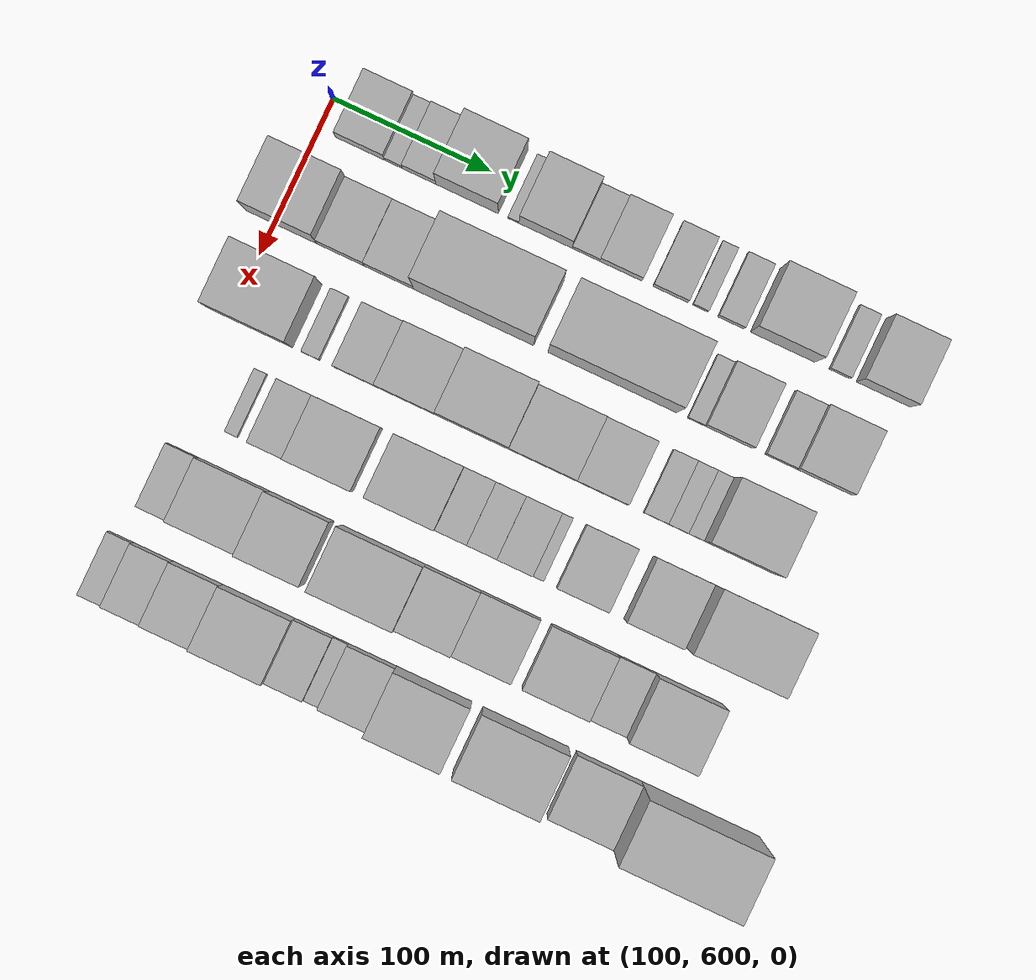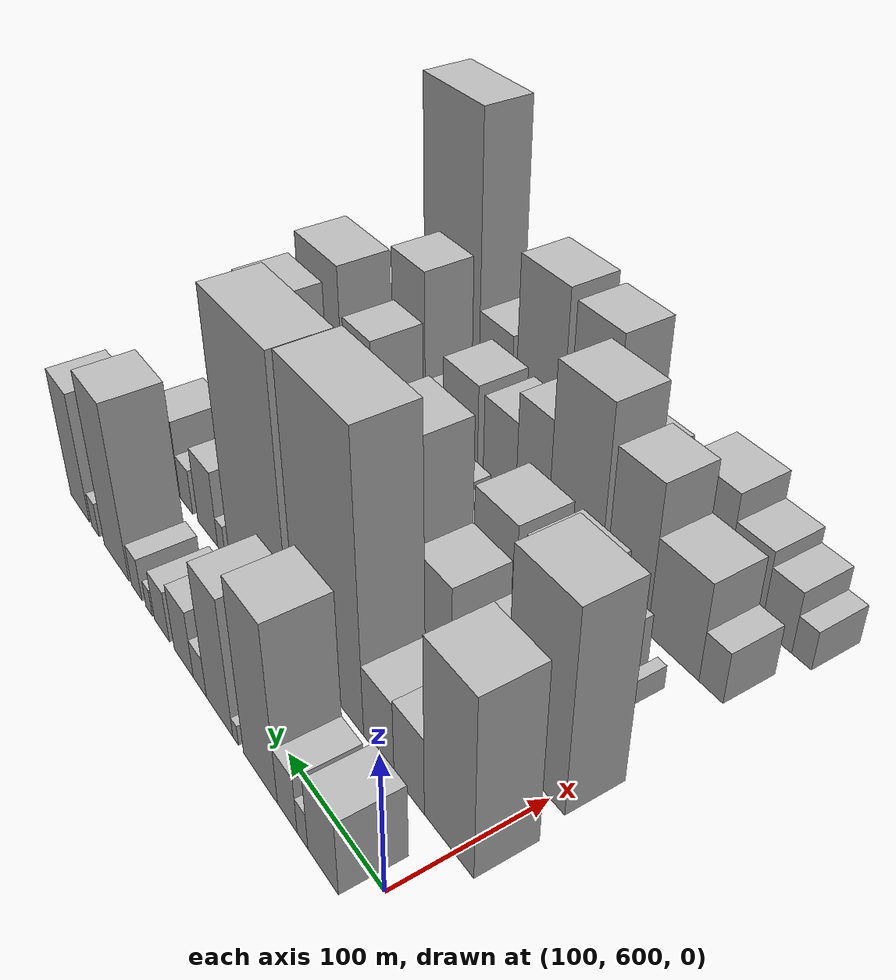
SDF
<sdf version="1.6">
 <world name="default">
  <model name="building_44">
   <static>1</static>
   <pose>100.0000 626.1144 0 0.000000 0.000000 0.000000</pose>
   <link name="link">
    <pose>0 0 27.00 0 0 0</pose>
    <collision name="collision"><geometry><box><size>40.0000 30.8526 54.0000</size></box></geometry></collision>
    <visual name="visual">
     <cast_shadows>0</cast_shadows>
     <geometry><box><size>40.0000 30.8526 54.0000</size></box></geometry>
     <material>
      <script>
       <uri>model://HANNAS_wall/materials/scripts</uri>
       <uri>model://HANNAS_wall/materials/textures</uri>
       <name>vrc/HANNAS_wall</name>
      </script>
     </material>
    </visual>
   </link>
  </model>
  <model name="building_45">
   <static>1</static>
   <pose>100.0000 647.2259 0 0.000000 0.000000 0.000000</pose>
   <link name="link">
    <pose>0 0 13.50 0 0 0</pose>
    <collision name="collision"><geometry><box><size>40.0000 11.3703 27.0000</size></box></geometry></collision>
    <visual name="visual">
     <cast_shadows>0</cast_shadows>
     <geometry><box><size>40.0000 11.3703 27.0000</size></box></geometry>
     <material>
      <script>
       <uri>model://HANNAS_wall/materials/scripts</uri>
       <uri>model://HANNAS_wall/materials/textures</uri>
       <name>vrc/HANNAS_wall</name>
      </script>
     </material>
    </visual>
   </link>
  </model>
  <model name="building_46">
   <static>1</static>
   <pose>100.0000 663.6406 0 0.000000 0.000000 0.000000</pose>
   <link name="link">
    <pose>0 0 21.00 0 0 0</pose>
    <collision name="collision"><geometry><box><size>40.0000 21.4592 42.0000</size></box></geometry></collision>
    <visual name="visual">
     <cast_shadows>0</cast_shadows>
     <geometry><box><size>40.0000 21.4592 42.0000</size></box></geometry>
     <material>
      <script>
       <uri>model://HANNAS_wall/materials/scripts</uri>
       <uri>model://HANNAS_wall/materials/textures</uri>
       <name>vrc/HANNAS_wall</name>
      </script>
     </material>
    </visual>
   </link>
  </model>
  <model name="building_47">
   <static>1</static>
   <pose>100.0000 694.1442 0 0.000000 0.000000 0.000000</pose>
   <link name="link">
    <pose>0 0 64.50 0 0 0</pose>
    <collision name="collision"><geometry><box><size>40.0000 39.5479 129.0000</size></box></geometry></collision>
    <visual name="visual">
     <cast_shadows>0</cast_shadows>
     <geometry><box><size>40.0000 39.5479 129.0000</size></box></geometry>
     <material>
      <script>
       <uri>model://HANNAS_wall/materials/scripts</uri>
       <uri>model://HANNAS_wall/materials/textures</uri>
       <name>vrc/HANNAS_wall</name>
      </script>
     </material>
    </visual>
   </link>
  </model>
  <model name="building_48">
   <static>1</static>
   <pose>100.0000 723.4973 0 0.000000 0.000000 0.000000</pose>
   <link name="link">
    <pose>0 0 7.50 0 0 0</pose>
    <collision name="collision"><geometry><box><size>40.0000 7.1582 15.0000</size></box></geometry></collision>
    <visual name="visual">
     <cast_shadows>0</cast_shadows>
     <geometry><box><size>40.0000 7.1582 15.0000</size></box></geometry>
     <material>
      <script>
       <uri>model://HANNAS_wall/materials/scripts</uri>
       <uri>model://HANNAS_wall/materials/textures</uri>
       <name>vrc/HANNAS_wall</name>
      </script>
     </material>
    </visual>
   </link>
  </model>
  <model name="building_49">
   <static>1</static>
   <pose>100.0000 743.8904 0 0.000000 0.000000 0.000000</pose>
   <link name="link">
    <pose>0 0 51.00 0 0 0</pose>
    <collision name="collision"><geometry><box><size>40.0000 33.6281 102.0000</size></box></geometry></collision>
    <visual name="visual">
     <cast_shadows>0</cast_shadows>
     <geometry><box><size>40.0000 33.6281 102.0000</size></box></geometry>
     <material>
      <script>
       <uri>model://HANNAS_wall/materials/scripts</uri>
       <uri>model://HANNAS_wall/materials/textures</uri>
       <name>vrc/HANNAS_wall</name>
      </script>
     </material>
    </visual>
   </link>
  </model>
  <model name="building_50">
   <static>1</static>
   <pose>100.0000 769.4575 0 0.000000 0.000000 0.000000</pose>
   <link name="link">
    <pose>0 0 15.00 0 0 0</pose>
    <collision name="collision"><geometry><box><size>40.0000 17.5061 30.0000</size></box></geometry></collision>
    <visual name="visual">
     <cast_shadows>0</cast_shadows>
     <geometry><box><size>40.0000 17.5061 30.0000</size></box></geometry>
     <material>
      <script>
       <uri>model://HANNAS_wall/materials/scripts</uri>
       <uri>model://HANNAS_wall/materials/textures</uri>
       <name>vrc/HANNAS_wall</name>
      </script>
     </material>
    </visual>
   </link>
  </model>
  <model name="building_51">
   <static>1</static>
   <pose>100.0000 791.5720 0 0.000000 0.000000 0.000000</pose>
   <link name="link">
    <pose>0 0 25.50 0 0 0</pose>
    <collision name="collision"><geometry><box><size>40.0000 26.7227 51.0000</size></box></geometry></collision>
    <visual name="visual">
     <cast_shadows>0</cast_shadows>
     <geometry><box><size>40.0000 26.7227 51.0000</size></box></geometry>
     <material>
      <script>
       <uri>model://HANNAS_wall/materials/scripts</uri>
       <uri>model://HANNAS_wall/materials/textures</uri>
       <name>vrc/HANNAS_wall</name>
      </script>
     </material>
    </visual>
   </link>
  </model>
  <model name="building_52">
   <static>1</static>
   <pose>100.0000 823.0485 0 0.000000 0.000000 0.000000</pose>
   <link name="link">
    <pose>0 0 19.50 0 0 0</pose>
    <collision name="collision"><geometry><box><size>40.0000 22.2304 39.0000</size></box></geometry></collision>
    <visual name="visual">
     <cast_shadows>0</cast_shadows>
     <geometry><box><size>40.0000 22.2304 39.0000</size></box></geometry>
     <material>
      <script>
       <uri>model://HANNAS_wall/materials/scripts</uri>
       <uri>model://HANNAS_wall/materials/textures</uri>
       <name>vrc/HANNAS_wall</name>
      </script>
     </material>
    </visual>
   </link>
  </model>
  <model name="building_53">
   <static>1</static>
   <pose>100.0000 842.0927 0 0.000000 0.000000 0.000000</pose>
   <link name="link">
    <pose>0 0 10.50 0 0 0</pose>
    <collision name="collision"><geometry><box><size>40.0000 9.8579 21.0000</size></box></geometry></collision>
    <visual name="visual">
     <cast_shadows>0</cast_shadows>
     <geometry><box><size>40.0000 9.8579 21.0000</size></box></geometry>
     <material>
      <script>
       <uri>model://HANNAS_wall/materials/scripts</uri>
       <uri>model://HANNAS_wall/materials/textures</uri>
       <name>vrc/HANNAS_wall</name>
      </script>
     </material>
    </visual>
   </link>
  </model>
  <model name="building_54">
   <static>1</static>
   <pose>100.0000 861.3727 0 0.000000 0.000000 0.000000</pose>
   <link name="link">
    <pose>0 0 16.50 0 0 0</pose>
    <collision name="collision"><geometry><box><size>40.0000 16.7021 33.0000</size></box></geometry></collision>
    <visual name="visual">
     <cast_shadows>0</cast_shadows>
     <geometry><box><size>40.0000 16.7021 33.0000</size></box></geometry>
     <material>
      <script>
       <uri>model://HANNAS_wall/materials/scripts</uri>
       <uri>model://HANNAS_wall/materials/textures</uri>
       <name>vrc/HANNAS_wall</name>
      </script>
     </material>
    </visual>
   </link>
  </model>
  <model name="building_55">
   <static>1</static>
   <pose>100.0000 894.1860 0 0.000000 0.000000 0.000000</pose>
   <link name="link">
    <pose>0 0 67.50 0 0 0</pose>
    <collision name="collision"><geometry><box><size>40.0000 40.9244 135.0000</size></box></geometry></collision>
    <visual name="visual">
     <cast_shadows>0</cast_shadows>
     <geometry><box><size>40.0000 40.9244 135.0000</size></box></geometry>
     <material>
      <script>
       <uri>model://HANNAS_wall/materials/scripts</uri>
       <uri>model://HANNAS_wall/materials/textures</uri>
       <name>vrc/HANNAS_wall</name>
      </script>
     </material>
    </visual>
   </link>
  </model>
  <model name="building_56">
   <static>1</static>
   <pose>100.0000 930.2796 0 0.000000 0.000000 0.000000</pose>
   <link name="link">
    <pose>0 0 13.50 0 0 0</pose>
    <collision name="collision"><geometry><box><size>40.0000 13.2628 27.0000</size></box></geometry></collision>
    <visual name="visual">
     <cast_shadows>0</cast_shadows>
     <geometry><box><size>40.0000 13.2628 27.0000</size></box></geometry>
     <material>
      <script>
       <uri>model://HANNAS_wall/materials/scripts</uri>
       <uri>model://HANNAS_wall/materials/textures</uri>
       <name>vrc/HANNAS_wall</name>
      </script>
     </material>
    </visual>
   </link>
  </model>
  <model name="building_57">
   <static>1</static>
   <pose>100.0000 957.9447 0 0.000000 0.000000 0.000000</pose>
   <link name="link">
    <pose>0 0 51.00 0 0 0</pose>
    <collision name="collision"><geometry><box><size>40.0000 34.0675 102.0000</size></box></geometry></collision>
    <visual name="visual">
     <cast_shadows>0</cast_shadows>
     <geometry><box><size>40.0000 34.0675 102.0000</size></box></geometry>
     <material>
      <script>
       <uri>model://HANNAS_wall/materials/scripts</uri>
       <uri>model://HANNAS_wall/materials/textures</uri>
       <name>vrc/HANNAS_wall</name>
      </script>
     </material>
    </visual>
   </link>
  </model>
  <model name="building_99">
   <static>1</static>
   <pose>160.0000 604.8363 0 0.000000 0.000000 0.000000</pose>
   <link name="link">
    <pose>0 0 64.50 0 0 0</pose>
    <collision name="collision"><geometry><box><size>40.0000 44.9960 129.0000</size></box></geometry></collision>
    <visual name="visual">
     <cast_shadows>0</cast_shadows>
     <geometry><box><size>40.0000 44.9960 129.0000</size></box></geometry>
     <material>
      <script>
       <uri>model://HANNAS_wall/materials/scripts</uri>
       <uri>model://HANNAS_wall/materials/textures</uri>
       <name>vrc/HANNAS_wall</name>
      </script>
     </material>
    </visual>
   </link>
  </model>
  <model name="building_100">
   <static>1</static>
   <pose>160.0000 642.2021 0 0.000000 0.000000 0.000000</pose>
   <link name="link">
    <pose>0 0 28.50 0 0 0</pose>
    <collision name="collision"><geometry><box><size>40.0000 29.7357 57.0000</size></box></geometry></collision>
    <visual name="visual">
     <cast_shadows>0</cast_shadows>
     <geometry><box><size>40.0000 29.7357 57.0000</size></box></geometry>
     <material>
      <script>
       <uri>model://HANNAS_wall/materials/scripts</uri>
       <uri>model://HANNAS_wall/materials/textures</uri>
       <name>vrc/HANNAS_wall</name>
      </script>
     </material>
    </visual>
   </link>
  </model>
  <model name="building_101">
   <static>1</static>
   <pose>160.0000 672.8429 0 0.000000 0.000000 0.000000</pose>
   <link name="link">
    <pose>0 0 27.00 0 0 0</pose>
    <collision name="collision"><geometry><box><size>40.0000 31.5459 54.0000</size></box></geometry></collision>
    <visual name="visual">
     <cast_shadows>0</cast_shadows>
     <geometry><box><size>40.0000 31.5459 54.0000</size></box></geometry>
     <material>
      <script>
       <uri>model://HANNAS_wall/materials/scripts</uri>
       <uri>model://HANNAS_wall/materials/textures</uri>
       <name>vrc/HANNAS_wall</name>
      </script>
     </material>
    </visual>
   </link>
  </model>
  <model name="building_102">
   <static>1</static>
   <pose>160.0000 726.5865 0 0.000000 0.000000 0.000000</pose>
   <link name="link">
    <pose>0 0 105.00 0 0 0</pose>
    <collision name="collision"><geometry><box><size>40.0000 75.9412 210.0000</size></box></geometry></collision>
    <visual name="visual">
     <cast_shadows>0</cast_shadows>
     <geometry><box><size>40.0000 75.9412 210.0000</size></box></geometry>
     <material>
      <script>
       <uri>model://HANNAS_wall/materials/scripts</uri>
       <uri>model://HANNAS_wall/materials/textures</uri>
       <name>vrc/HANNAS_wall</name>
      </script>
     </material>
    </visual>
   </link>
  </model>
  <model name="building_103">
   <static>1</static>
   <pose>160.0000 814.2905 0 0.000000 0.000000 0.000000</pose>
   <link name="link">
    <pose>0 0 102.00 0 0 0</pose>
    <collision name="collision"><geometry><box><size>40.0000 81.4667 204.0000</size></box></geometry></collision>
    <visual name="visual">
     <cast_shadows>0</cast_shadows>
     <geometry><box><size>40.0000 81.4667 204.0000</size></box></geometry>
     <material>
      <script>
       <uri>model://HANNAS_wall/materials/scripts</uri>
       <uri>model://HANNAS_wall/materials/textures</uri>
       <name>vrc/HANNAS_wall</name>
      </script>
     </material>
    </visual>
   </link>
  </model>
  <model name="building_104">
   <static>1</static>
   <pose>160.0000 867.4569 0 0.000000 0.000000 0.000000</pose>
   <link name="link">
    <pose>0 0 12.00 0 0 0</pose>
    <collision name="collision"><geometry><box><size>40.0000 10.8660 24.0000</size></box></geometry></collision>
    <visual name="visual">
     <cast_shadows>0</cast_shadows>
     <geometry><box><size>40.0000 10.8660 24.0000</size></box></geometry>
     <material>
      <script>
       <uri>model://HANNAS_wall/materials/scripts</uri>
       <uri>model://HANNAS_wall/materials/textures</uri>
       <name>vrc/HANNAS_wall</name>
      </script>
     </material>
    </visual>
   </link>
  </model>
  <model name="building_105">
   <static>1</static>
   <pose>160.0000 888.0354 0 0.000000 0.000000 0.000000</pose>
   <link name="link">
    <pose>0 0 30.00 0 0 0</pose>
    <collision name="collision"><geometry><box><size>40.0000 30.2911 60.0000</size></box></geometry></collision>
    <visual name="visual">
     <cast_shadows>0</cast_shadows>
     <geometry><box><size>40.0000 30.2911 60.0000</size></box></geometry>
     <material>
      <script>
       <uri>model://HANNAS_wall/materials/scripts</uri>
       <uri>model://HANNAS_wall/materials/textures</uri>
       <name>vrc/HANNAS_wall</name>
      </script>
     </material>
    </visual>
   </link>
  </model>
  <model name="building_106">
   <static>1</static>
   <pose>160.0000 921.0715 0 0.000000 0.000000 0.000000</pose>
   <link name="link">
    <pose>0 0 18.00 0 0 0</pose>
    <collision name="collision"><geometry><box><size>40.0000 19.7810 36.0000</size></box></geometry></collision>
    <visual name="visual">
     <cast_shadows>0</cast_shadows>
     <geometry><box><size>40.0000 19.7810 36.0000</size></box></geometry>
     <material>
      <script>
       <uri>model://HANNAS_wall/materials/scripts</uri>
       <uri>model://HANNAS_wall/materials/textures</uri>
       <name>vrc/HANNAS_wall</name>
      </script>
     </material>
    </visual>
   </link>
  </model>
  <model name="building_107">
   <static>1</static>
   <pose>160.0000 948.5288 0 0.000000 0.000000 0.000000</pose>
   <link name="link">
    <pose>0 0 31.50 0 0 0</pose>
    <collision name="collision"><geometry><box><size>40.0000 35.1337 63.0000</size></box></geometry></collision>
    <visual name="visual">
     <cast_shadows>0</cast_shadows>
     <geometry><box><size>40.0000 35.1337 63.0000</size></box></geometry>
     <material>
      <script>
       <uri>model://HANNAS_wall/materials/scripts</uri>
       <uri>model://HANNAS_wall/materials/textures</uri>
       <name>vrc/HANNAS_wall</name>
      </script>
     </material>
    </visual>
   </link>
  </model>
  <model name="building_149">
   <static>1</static>
   <pose>220.0000 613.6707 0 0.000000 0.000000 0.000000</pose>
   <link name="link">
    <pose>0 0 73.50 0 0 0</pose>
    <collision name="collision"><geometry><box><size>40.0000 52.3293 147.0000</size></box></geometry></collision>
    <visual name="visual">
     <cast_shadows>0</cast_shadows>
     <geometry><box><size>40.0000 52.3293 147.0000</size></box></geometry>
     <material>
      <script>
       <uri>model://HANNAS_wall/materials/scripts</uri>
       <uri>model://HANNAS_wall/materials/textures</uri>
       <name>vrc/HANNAS_wall</name>
      </script>
     </material>
    </visual>
   </link>
  </model>
  <model name="building_150">
   <static>1</static>
   <pose>220.0000 651.4731 0 0.000000 0.000000 0.000000</pose>
   <link name="link">
    <pose>0 0 13.50 0 0 0</pose>
    <collision name="collision"><geometry><box><size>40.0000 11.2756 27.0000</size></box></geometry></collision>
    <visual name="visual">
     <cast_shadows>0</cast_shadows>
     <geometry><box><size>40.0000 11.2756 27.0000</size></box></geometry>
     <material>
      <script>
       <uri>model://HANNAS_wall/materials/scripts</uri>
       <uri>model://HANNAS_wall/materials/textures</uri>
       <name>vrc/HANNAS_wall</name>
      </script>
     </material>
    </visual>
   </link>
  </model>
  <model name="building_151">
   <static>1</static>
   <pose>220.0000 679.3214 0 0.000000 0.000000 0.000000</pose>
   <link name="link">
    <pose>0 0 25.50 0 0 0</pose>
    <collision name="collision"><geometry><box><size>40.0000 26.4209 51.0000</size></box></geometry></collision>
    <visual name="visual">
     <cast_shadows>0</cast_shadows>
     <geometry><box><size>40.0000 26.4209 51.0000</size></box></geometry>
     <material>
      <script>
       <uri>model://HANNAS_wall/materials/scripts</uri>
       <uri>model://HANNAS_wall/materials/textures</uri>
       <name>vrc/HANNAS_wall</name>
      </script>
     </material>
    </visual>
   </link>
  </model>
  <model name="building_152">
   <static>1</static>
   <pose>220.0000 711.9512 0 0.000000 0.000000 0.000000</pose>
   <link name="link">
    <pose>0 0 37.50 0 0 0</pose>
    <collision name="collision"><geometry><box><size>40.0000 38.8388 75.0000</size></box></geometry></collision>
    <visual name="visual">
     <cast_shadows>0</cast_shadows>
     <geometry><box><size>40.0000 38.8388 75.0000</size></box></geometry>
     <material>
      <script>
       <uri>model://HANNAS_wall/materials/scripts</uri>
       <uri>model://HANNAS_wall/materials/textures</uri>
       <name>vrc/HANNAS_wall</name>
      </script>
     </material>
    </visual>
   </link>
  </model>
  <model name="building_153">
   <static>1</static>
   <pose>220.0000 754.1376 0 0.000000 0.000000 0.000000</pose>
   <link name="link">
    <pose>0 0 75.00 0 0 0</pose>
    <collision name="collision"><geometry><box><size>40.0000 45.5340 150.0000</size></box></geometry></collision>
    <visual name="visual">
     <cast_shadows>0</cast_shadows>
     <geometry><box><size>40.0000 45.5340 150.0000</size></box></geometry>
     <material>
      <script>
       <uri>model://HANNAS_wall/materials/scripts</uri>
       <uri>model://HANNAS_wall/materials/textures</uri>
       <name>vrc/HANNAS_wall</name>
      </script>
     </material>
    </visual>
   </link>
  </model>
  <model name="building_154">
   <static>1</static>
   <pose>220.0000 798.2572 0 0.000000 0.000000 0.000000</pose>
   <link name="link">
    <pose>0 0 37.50 0 0 0</pose>
    <collision name="collision"><geometry><box><size>40.0000 42.7051 75.0000</size></box></geometry></collision>
    <visual name="visual">
     <cast_shadows>0</cast_shadows>
     <geometry><box><size>40.0000 42.7051 75.0000</size></box></geometry>
     <material>
      <script>
       <uri>model://HANNAS_wall/materials/scripts</uri>
       <uri>model://HANNAS_wall/materials/textures</uri>
       <name>vrc/HANNAS_wall</name>
      </script>
     </material>
    </visual>
   </link>
  </model>
  <model name="building_155">
   <static>1</static>
   <pose>220.0000 835.9310 0 0.000000 0.000000 0.000000</pose>
   <link name="link">
    <pose>0 0 30.00 0 0 0</pose>
    <collision name="collision"><geometry><box><size>40.0000 32.6424 60.0000</size></box></geometry></collision>
    <visual name="visual">
     <cast_shadows>0</cast_shadows>
     <geometry><box><size>40.0000 32.6424 60.0000</size></box></geometry>
     <material>
      <script>
       <uri>model://HANNAS_wall/materials/scripts</uri>
       <uri>model://HANNAS_wall/materials/textures</uri>
       <name>vrc/HANNAS_wall</name>
      </script>
     </material>
    </visual>
   </link>
  </model>
  <model name="building_156">
   <static>1</static>
   <pose>220.0000 869.9926 0 0.000000 0.000000 0.000000</pose>
   <link name="link">
    <pose>0 0 15.00 0 0 0</pose>
    <collision name="collision"><geometry><box><size>40.0000 15.4809 30.0000</size></box></geometry></collision>
    <visual name="visual">
     <cast_shadows>0</cast_shadows>
     <geometry><box><size>40.0000 15.4809 30.0000</size></box></geometry>
     <material>
      <script>
       <uri>model://HANNAS_wall/materials/scripts</uri>
       <uri>model://HANNAS_wall/materials/textures</uri>
       <name>vrc/HANNAS_wall</name>
      </script>
     </material>
    </visual>
   </link>
  </model>
  <model name="building_157">
   <static>1</static>
   <pose>220.0000 884.1000 0 0.000000 0.000000 0.000000</pose>
   <link name="link">
    <pose>0 0 13.50 0 0 0</pose>
    <collision name="collision"><geometry><box><size>40.0000 12.7339 27.0000</size></box></geometry></collision>
    <visual name="visual">
     <cast_shadows>0</cast_shadows>
     <geometry><box><size>40.0000 12.7339 27.0000</size></box></geometry>
     <material>
      <script>
       <uri>model://HANNAS_wall/materials/scripts</uri>
       <uri>model://HANNAS_wall/materials/textures</uri>
       <name>vrc/HANNAS_wall</name>
      </script>
     </material>
    </visual>
   </link>
  </model>
  <model name="building_158">
   <static>1</static>
   <pose>220.0000 895.4267 0 0.000000 0.000000 0.000000</pose>
   <link name="link">
    <pose>0 0 10.50 0 0 0</pose>
    <collision name="collision"><geometry><box><size>40.0000 9.9195 21.0000</size></box></geometry></collision>
    <visual name="visual">
     <cast_shadows>0</cast_shadows>
     <geometry><box><size>40.0000 9.9195 21.0000</size></box></geometry>
     <material>
      <script>
       <uri>model://HANNAS_wall/materials/scripts</uri>
       <uri>model://HANNAS_wall/materials/textures</uri>
       <name>vrc/HANNAS_wall</name>
      </script>
     </material>
    </visual>
   </link>
  </model>
  <model name="building_159">
   <static>1</static>
   <pose>220.0000 923.1628 0 0.000000 0.000000 0.000000</pose>
   <link name="link">
    <pose>0 0 75.00 0 0 0</pose>
    <collision name="collision"><geometry><box><size>40.0000 45.5526 150.0000</size></box></geometry></collision>
    <visual name="visual">
     <cast_shadows>0</cast_shadows>
     <geometry><box><size>40.0000 45.5526 150.0000</size></box></geometry>
     <material>
      <script>
       <uri>model://HANNAS_wall/materials/scripts</uri>
       <uri>model://HANNAS_wall/materials/textures</uri>
       <name>vrc/HANNAS_wall</name>
      </script>
     </material>
    </visual>
   </link>
  </model>
  <model name="building_203">
   <static>1</static>
   <pose>280.0000 629.4679 0 0.000000 0.000000 0.000000</pose>
   <link name="link">
    <pose>0 0 9.00 0 0 0</pose>
    <collision name="collision"><geometry><box><size>40.0000 8.0155 18.0000</size></box></geometry></collision>
    <visual name="visual">
     <cast_shadows>0</cast_shadows>
     <geometry><box><size>40.0000 8.0155 18.0000</size></box></geometry>
     <material>
      <script>
       <uri>model://HANNAS_wall/materials/scripts</uri>
       <uri>model://HANNAS_wall/materials/textures</uri>
       <name>vrc/HANNAS_wall</name>
      </script>
     </material>
    </visual>
   </link>
  </model>
  <model name="building_204">
   <static>1</static>
   <pose>280.0000 652.0252 0 0.000000 0.000000 0.000000</pose>
   <link name="link">
    <pose>0 0 22.50 0 0 0</pose>
    <collision name="collision"><geometry><box><size>40.0000 23.0991 45.0000</size></box></geometry></collision>
    <visual name="visual">
     <cast_shadows>0</cast_shadows>
     <geometry><box><size>40.0000 23.0991 45.0000</size></box></geometry>
     <material>
      <script>
       <uri>model://HANNAS_wall/materials/scripts</uri>
       <uri>model://HANNAS_wall/materials/textures</uri>
       <name>vrc/HANNAS_wall</name>
      </script>
     </material>
    </visual>
   </link>
  </model>
  <model name="building_205">
   <static>1</static>
   <pose>280.0000 685.0082 0 0.000000 0.000000 0.000000</pose>
   <link name="link">
    <pose>0 0 37.50 0 0 0</pose>
    <collision name="collision"><geometry><box><size>40.0000 42.8668 75.0000</size></box></geometry></collision>
    <visual name="visual">
     <cast_shadows>0</cast_shadows>
     <geometry><box><size>40.0000 42.8668 75.0000</size></box></geometry>
     <material>
      <script>
       <uri>model://HANNAS_wall/materials/scripts</uri>
       <uri>model://HANNAS_wall/materials/textures</uri>
       <name>vrc/HANNAS_wall</name>
      </script>
     </material>
    </visual>
   </link>
  </model>
  <model name="building_206">
   <static>1</static>
   <pose>280.0000 736.4245 0 0.000000 0.000000 0.000000</pose>
   <link name="link">
    <pose>0 0 37.50 0 0 0</pose>
    <collision name="collision"><geometry><box><size>40.0000 43.9658 75.0000</size></box></geometry></collision>
    <visual name="visual">
     <cast_shadows>0</cast_shadows>
     <geometry><box><size>40.0000 43.9658 75.0000</size></box></geometry>
     <material>
      <script>
       <uri>model://HANNAS_wall/materials/scripts</uri>
       <uri>model://HANNAS_wall/materials/textures</uri>
       <name>vrc/HANNAS_wall</name>
      </script>
     </material>
    </visual>
   </link>
  </model>
  <model name="building_207">
   <static>1</static>
   <pose>280.0000 768.4598 0 0.000000 0.000000 0.000000</pose>
   <link name="link">
    <pose>0 0 18.00 0 0 0</pose>
    <collision name="collision"><geometry><box><size>40.0000 20.1049 36.0000</size></box></geometry></collision>
    <visual name="visual">
     <cast_shadows>0</cast_shadows>
     <geometry><box><size>40.0000 20.1049 36.0000</size></box></geometry>
     <material>
      <script>
       <uri>model://HANNAS_wall/materials/scripts</uri>
       <uri>model://HANNAS_wall/materials/textures</uri>
       <name>vrc/HANNAS_wall</name>
      </script>
     </material>
    </visual>
   </link>
  </model>
  <model name="building_208">
   <static>1</static>
   <pose>280.0000 788.0768 0 0.000000 0.000000 0.000000</pose>
   <link name="link">
    <pose>0 0 16.50 0 0 0</pose>
    <collision name="collision"><geometry><box><size>40.0000 19.1289 33.0000</size></box></geometry></collision>
    <visual name="visual">
     <cast_shadows>0</cast_shadows>
     <geometry><box><size>40.0000 19.1289 33.0000</size></box></geometry>
     <material>
      <script>
       <uri>model://HANNAS_wall/materials/scripts</uri>
       <uri>model://HANNAS_wall/materials/textures</uri>
       <name>vrc/HANNAS_wall</name>
      </script>
     </material>
    </visual>
   </link>
  </model>
  <model name="building_209">
   <static>1</static>
   <pose>280.0000 809.0052 0 0.000000 0.000000 0.000000</pose>
   <link name="link">
    <pose>0 0 19.50 0 0 0</pose>
    <collision name="collision"><geometry><box><size>40.0000 22.7280 39.0000</size></box></geometry></collision>
    <visual name="visual">
     <cast_shadows>0</cast_shadows>
     <geometry><box><size>40.0000 22.7280 39.0000</size></box></geometry>
     <material>
      <script>
       <uri>model://HANNAS_wall/materials/scripts</uri>
       <uri>model://HANNAS_wall/materials/textures</uri>
       <name>vrc/HANNAS_wall</name>
      </script>
     </material>
    </visual>
   </link>
  </model>
  <model name="building_210">
   <static>1</static>
   <pose>280.0000 823.8369 0 0.000000 0.000000 0.000000</pose>
   <link name="link">
    <pose>0 0 7.50 0 0 0</pose>
    <collision name="collision"><geometry><box><size>40.0000 6.9354 15.0000</size></box></geometry></collision>
    <visual name="visual">
     <cast_shadows>0</cast_shadows>
     <geometry><box><size>40.0000 6.9354 15.0000</size></box></geometry>
     <material>
      <script>
       <uri>model://HANNAS_wall/materials/scripts</uri>
       <uri>model://HANNAS_wall/materials/textures</uri>
       <name>vrc/HANNAS_wall</name>
      </script>
     </material>
    </visual>
   </link>
  </model>
  <model name="building_211">
   <static>1</static>
   <pose>280.0000 851.6866 0 0.000000 0.000000 0.000000</pose>
   <link name="link">
    <pose>0 0 30.00 0 0 0</pose>
    <collision name="collision"><geometry><box><size>40.0000 32.7639 60.0000</size></box></geometry></collision>
    <visual name="visual">
     <cast_shadows>0</cast_shadows>
     <geometry><box><size>40.0000 32.7639 60.0000</size></box></geometry>
     <material>
      <script>
       <uri>model://HANNAS_wall/materials/scripts</uri>
       <uri>model://HANNAS_wall/materials/textures</uri>
       <name>vrc/HANNAS_wall</name>
      </script>
     </material>
    </visual>
   </link>
  </model>
  <model name="building_212">
   <static>1</static>
   <pose>280.0000 895.9225 0 0.000000 0.000000 0.000000</pose>
   <link name="link">
    <pose>0 0 55.50 0 0 0</pose>
    <collision name="collision"><geometry><box><size>40.0000 35.7079 111.0000</size></box></geometry></collision>
    <visual name="visual">
     <cast_shadows>0</cast_shadows>
     <geometry><box><size>40.0000 35.7079 111.0000</size></box></geometry>
     <material>
      <script>
       <uri>model://HANNAS_wall/materials/scripts</uri>
       <uri>model://HANNAS_wall/materials/textures</uri>
       <name>vrc/HANNAS_wall</name>
      </script>
     </material>
    </visual>
   </link>
  </model>
  <model name="building_213">
   <static>1</static>
   <pose>280.0000 946.5442 0 0.000000 0.000000 0.000000</pose>
   <link name="link">
    <pose>0 0 73.50 0 0 0</pose>
    <collision name="collision"><geometry><box><size>40.0000 57.5356 147.0000</size></box></geometry></collision>
    <visual name="visual">
     <cast_shadows>0</cast_shadows>
     <geometry><box><size>40.0000 57.5356 147.0000</size></box></geometry>
     <material>
      <script>
       <uri>model://HANNAS_wall/materials/scripts</uri>
       <uri>model://HANNAS_wall/materials/textures</uri>
       <name>vrc/HANNAS_wall</name>
      </script>
     </material>
    </visual>
   </link>
  </model>
  <model name="building_256">
   <static>1</static>
   <pose>340.0000 608.6454 0 0.000000 0.000000 0.000000</pose>
   <link name="link">
    <pose>0 0 19.50 0 0 0</pose>
    <collision name="collision"><geometry><box><size>40.0000 19.8984 39.0000</size></box></geometry></collision>
    <visual name="visual">
     <cast_shadows>0</cast_shadows>
     <geometry><box><size>40.0000 19.8984 39.0000</size></box></geometry>
     <material>
      <script>
       <uri>model://HANNAS_wall/materials/scripts</uri>
       <uri>model://HANNAS_wall/materials/textures</uri>
       <name>vrc/HANNAS_wall</name>
      </script>
     </material>
    </visual>
   </link>
  </model>
  <model name="building_257">
   <static>1</static>
   <pose>340.0000 640.9243 0 0.000000 0.000000 0.000000</pose>
   <link name="link">
    <pose>0 0 37.50 0 0 0</pose>
    <collision name="collision"><geometry><box><size>40.0000 44.6593 75.0000</size></box></geometry></collision>
    <visual name="visual">
     <cast_shadows>0</cast_shadows>
     <geometry><box><size>40.0000 44.6593 75.0000</size></box></geometry>
     <material>
      <script>
       <uri>model://HANNAS_wall/materials/scripts</uri>
       <uri>model://HANNAS_wall/materials/textures</uri>
       <name>vrc/HANNAS_wall</name>
      </script>
     </material>
    </visual>
   </link>
  </model>
  <model name="building_258">
   <static>1</static>
   <pose>340.0000 683.5706 0 0.000000 0.000000 0.000000</pose>
   <link name="link">
    <pose>0 0 57.00 0 0 0</pose>
    <collision name="collision"><geometry><box><size>40.0000 40.6334 114.0000</size></box></geometry></collision>
    <visual name="visual">
     <cast_shadows>0</cast_shadows>
     <geometry><box><size>40.0000 40.6334 114.0000</size></box></geometry>
     <material>
      <script>
       <uri>model://HANNAS_wall/materials/scripts</uri>
       <uri>model://HANNAS_wall/materials/textures</uri>
       <name>vrc/HANNAS_wall</name>
      </script>
     </material>
    </visual>
   </link>
  </model>
  <model name="building_259">
   <static>1</static>
   <pose>340.0000 735.4664 0 0.000000 0.000000 0.000000</pose>
   <link name="link">
    <pose>0 0 70.50 0 0 0</pose>
    <collision name="collision"><geometry><box><size>40.0000 53.1582 141.0000</size></box></geometry></collision>
    <visual name="visual">
     <cast_shadows>0</cast_shadows>
     <geometry><box><size>40.0000 53.1582 141.0000</size></box></geometry>
     <material>
      <script>
       <uri>model://HANNAS_wall/materials/scripts</uri>
       <uri>model://HANNAS_wall/materials/textures</uri>
       <name>vrc/HANNAS_wall</name>
      </script>
     </material>
    </visual>
   </link>
  </model>
  <model name="building_260">
   <static>1</static>
   <pose>340.0000 779.6664 0 0.000000 0.000000 0.000000</pose>
   <link name="link">
    <pose>0 0 48.00 0 0 0</pose>
    <collision name="collision"><geometry><box><size>40.0000 35.2417 96.0000</size></box></geometry></collision>
    <visual name="visual">
     <cast_shadows>0</cast_shadows>
     <geometry><box><size>40.0000 35.2417 96.0000</size></box></geometry>
     <material>
      <script>
       <uri>model://HANNAS_wall/materials/scripts</uri>
       <uri>model://HANNAS_wall/materials/textures</uri>
       <name>vrc/HANNAS_wall</name>
      </script>
     </material>
    </visual>
   </link>
  </model>
  <model name="building_261">
   <static>1</static>
   <pose>340.0000 815.9796 0 0.000000 0.000000 0.000000</pose>
   <link name="link">
    <pose>0 0 36.00 0 0 0</pose>
    <collision name="collision"><geometry><box><size>40.0000 37.3847 72.0000</size></box></geometry></collision>
    <visual name="visual">
     <cast_shadows>0</cast_shadows>
     <geometry><box><size>40.0000 37.3847 72.0000</size></box></geometry>
     <material>
      <script>
       <uri>model://HANNAS_wall/materials/scripts</uri>
       <uri>model://HANNAS_wall/materials/textures</uri>
       <name>vrc/HANNAS_wall</name>
      </script>
     </material>
    </visual>
   </link>
  </model>
  <model name="building_262">
   <static>1</static>
   <pose>340.0000 862.7260 0 0.000000 0.000000 0.000000</pose>
   <link name="link">
    <pose>0 0 37.50 0 0 0</pose>
    <collision name="collision"><geometry><box><size>40.0000 42.1081 75.0000</size></box></geometry></collision>
    <visual name="visual">
     <cast_shadows>0</cast_shadows>
     <geometry><box><size>40.0000 42.1081 75.0000</size></box></geometry>
     <material>
      <script>
       <uri>model://HANNAS_wall/materials/scripts</uri>
       <uri>model://HANNAS_wall/materials/textures</uri>
       <name>vrc/HANNAS_wall</name>
      </script>
     </material>
    </visual>
   </link>
  </model>
  <model name="building_263">
   <static>1</static>
   <pose>340.0000 895.5520 0 0.000000 0.000000 0.000000</pose>
   <link name="link">
    <pose>0 0 21.00 0 0 0</pose>
    <collision name="collision"><geometry><box><size>40.0000 23.5440 42.0000</size></box></geometry></collision>
    <visual name="visual">
     <cast_shadows>0</cast_shadows>
     <geometry><box><size>40.0000 23.5440 42.0000</size></box></geometry>
     <material>
      <script>
       <uri>model://HANNAS_wall/materials/scripts</uri>
       <uri>model://HANNAS_wall/materials/textures</uri>
       <name>vrc/HANNAS_wall</name>
      </script>
     </material>
    </visual>
   </link>
  </model>
  <model name="building_264">
   <static>1</static>
   <pose>340.0000 928.5853 0 0.000000 0.000000 0.000000</pose>
   <link name="link">
    <pose>0 0 64.50 0 0 0</pose>
    <collision name="collision"><geometry><box><size>40.0000 42.5225 129.0000</size></box></geometry></collision>
    <visual name="visual">
     <cast_shadows>0</cast_shadows>
     <geometry><box><size>40.0000 42.5225 129.0000</size></box></geometry>
     <material>
      <script>
       <uri>model://HANNAS_wall/materials/scripts</uri>
       <uri>model://HANNAS_wall/materials/textures</uri>
       <name>vrc/HANNAS_wall</name>
      </script>
     </material>
    </visual>
   </link>
  </model>
  <model name="building_311">
   <static>1</static>
   <pose>400.0000 597.3730 0 0.000000 0.000000 0.000000</pose>
   <link name="link">
    <pose>0 0 15.00 0 0 0</pose>
    <collision name="collision"><geometry><box><size>40.0000 15.5937 30.0000</size></box></geometry></collision>
    <visual name="visual">
     <cast_shadows>0</cast_shadows>
     <geometry><box><size>40.0000 15.5937 30.0000</size></box></geometry>
     <material>
      <script>
       <uri>model://HANNAS_wall/materials/scripts</uri>
       <uri>model://HANNAS_wall/materials/textures</uri>
       <name>vrc/HANNAS_wall</name>
      </script>
     </material>
    </visual>
   </link>
  </model>
  <model name="building_312">
   <static>1</static>
   <pose>400.0000 617.6335 0 0.000000 0.000000 0.000000</pose>
   <link name="link">
    <pose>0 0 24.00 0 0 0</pose>
    <collision name="collision"><geometry><box><size>40.0000 24.9273 48.0000</size></box></geometry></collision>
    <visual name="visual">
     <cast_shadows>0</cast_shadows>
     <geometry><box><size>40.0000 24.9273 48.0000</size></box></geometry>
     <material>
      <script>
       <uri>model://HANNAS_wall/materials/scripts</uri>
       <uri>model://HANNAS_wall/materials/textures</uri>
       <name>vrc/HANNAS_wall</name>
      </script>
     </material>
    </visual>
   </link>
  </model>
  <model name="building_313">
   <static>1</static>
   <pose>400.0000 645.9037 0 0.000000 0.000000 0.000000</pose>
   <link name="link">
    <pose>0 0 30.00 0 0 0</pose>
    <collision name="collision"><geometry><box><size>40.0000 31.6131 60.0000</size></box></geometry></collision>
    <visual name="visual">
     <cast_shadows>0</cast_shadows>
     <geometry><box><size>40.0000 31.6131 60.0000</size></box></geometry>
     <material>
      <script>
       <uri>model://HANNAS_wall/materials/scripts</uri>
       <uri>model://HANNAS_wall/materials/textures</uri>
       <name>vrc/HANNAS_wall</name>
      </script>
     </material>
    </visual>
   </link>
  </model>
  <model name="building_314">
   <static>1</static>
   <pose>400.0000 684.5934 0 0.000000 0.000000 0.000000</pose>
   <link name="link">
    <pose>0 0 40.50 0 0 0</pose>
    <collision name="collision"><geometry><box><size>40.0000 45.7663 81.0000</size></box></geometry></collision>
    <visual name="visual">
     <cast_shadows>0</cast_shadows>
     <geometry><box><size>40.0000 45.7663 81.0000</size></box></geometry>
     <material>
      <script>
       <uri>model://HANNAS_wall/materials/scripts</uri>
       <uri>model://HANNAS_wall/materials/textures</uri>
       <name>vrc/HANNAS_wall</name>
      </script>
     </material>
    </visual>
   </link>
  </model>
  <model name="building_315">
   <static>1</static>
   <pose>400.0000 719.6643 0 0.000000 0.000000 0.000000</pose>
   <link name="link">
    <pose>0 0 22.50 0 0 0</pose>
    <collision name="collision"><geometry><box><size>40.0000 24.3756 45.0000</size></box></geometry></collision>
    <visual name="visual">
     <cast_shadows>0</cast_shadows>
     <geometry><box><size>40.0000 24.3756 45.0000</size></box></geometry>
     <material>
      <script>
       <uri>model://HANNAS_wall/materials/scripts</uri>
       <uri>model://HANNAS_wall/materials/textures</uri>
       <name>vrc/HANNAS_wall</name>
      </script>
     </material>
    </visual>
   </link>
  </model>
  <model name="building_316">
   <static>1</static>
   <pose>400.0000 736.6527 0 0.000000 0.000000 0.000000</pose>
   <link name="link">
    <pose>0 0 12.00 0 0 0</pose>
    <collision name="collision"><geometry><box><size>40.0000 9.6013 24.0000</size></box></geometry></collision>
    <visual name="visual">
     <cast_shadows>0</cast_shadows>
     <geometry><box><size>40.0000 9.6013 24.0000</size></box></geometry>
     <material>
      <script>
       <uri>model://HANNAS_wall/materials/scripts</uri>
       <uri>model://HANNAS_wall/materials/textures</uri>
       <name>vrc/HANNAS_wall</name>
      </script>
     </material>
    </visual>
   </link>
  </model>
  <model name="building_317">
   <static>1</static>
   <pose>400.0000 756.5879 0 0.000000 0.000000 0.000000</pose>
   <link name="link">
    <pose>0 0 28.50 0 0 0</pose>
    <collision name="collision"><geometry><box><size>40.0000 30.2689 57.0000</size></box></geometry></collision>
    <visual name="visual">
     <cast_shadows>0</cast_shadows>
     <geometry><box><size>40.0000 30.2689 57.0000</size></box></geometry>
     <material>
      <script>
       <uri>model://HANNAS_wall/materials/scripts</uri>
       <uri>model://HANNAS_wall/materials/textures</uri>
       <name>vrc/HANNAS_wall</name>
      </script>
     </material>
    </visual>
   </link>
  </model>
  <model name="building_318">
   <static>1</static>
   <pose>400.0000 795.5333 0 0.000000 0.000000 0.000000</pose>
   <link name="link">
    <pose>0 0 66.00 0 0 0</pose>
    <collision name="collision"><geometry><box><size>40.0000 47.6219 132.0000</size></box></geometry></collision>
    <visual name="visual">
     <cast_shadows>0</cast_shadows>
     <geometry><box><size>40.0000 47.6219 132.0000</size></box></geometry>
     <material>
      <script>
       <uri>model://HANNAS_wall/materials/scripts</uri>
       <uri>model://HANNAS_wall/materials/textures</uri>
       <name>vrc/HANNAS_wall</name>
      </script>
     </material>
    </visual>
   </link>
  </model>
  <model name="building_319">
   <static>1</static>
   <pose>400.0000 853.5065 0 0.000000 0.000000 0.000000</pose>
   <link name="link">
    <pose>0 0 69.00 0 0 0</pose>
    <collision name="collision"><geometry><box><size>40.0000 54.3244 138.0000</size></box></geometry></collision>
    <visual name="visual">
     <cast_shadows>0</cast_shadows>
     <geometry><box><size>40.0000 54.3244 138.0000</size></box></geometry>
     <material>
      <script>
       <uri>model://HANNAS_wall/materials/scripts</uri>
       <uri>model://HANNAS_wall/materials/textures</uri>
       <name>vrc/HANNAS_wall</name>
      </script>
     </material>
    </visual>
   </link>
  </model>
  <model name="building_320">
   <static>1</static>
   <pose>400.0000 906.3443 0 0.000000 0.000000 0.000000</pose>
   <link name="link">
    <pose>0 0 34.50 0 0 0</pose>
    <collision name="collision"><geometry><box><size>40.0000 41.3512 69.0000</size></box></geometry></collision>
    <visual name="visual">
     <cast_shadows>0</cast_shadows>
     <geometry><box><size>40.0000 41.3512 69.0000</size></box></geometry>
     <material>
      <script>
       <uri>model://HANNAS_wall/materials/scripts</uri>
       <uri>model://HANNAS_wall/materials/textures</uri>
       <name>vrc/HANNAS_wall</name>
      </script>
     </material>
    </visual>
   </link>
  </model>
  <model name="building_321">
   <static>1</static>
   <pose>400.0000 964.2787 0 0.000000 0.000000 0.000000</pose>
   <link name="link">
    <pose>0 0 112.50 0 0 0</pose>
    <collision name="collision"><geometry><box><size>40.0000 74.5176 225.0000</size></box></geometry></collision>
    <visual name="visual">
     <cast_shadows>0</cast_shadows>
     <geometry><box><size>40.0000 74.5176 225.0000</size></box></geometry>
     <material>
      <script>
       <uri>model://HANNAS_wall/materials/scripts</uri>
       <uri>model://HANNAS_wall/materials/textures</uri>
       <name>vrc/HANNAS_wall</name>
      </script>
     </material>
    </visual>
   </link>
  </model>
 </world>
</sdf>
